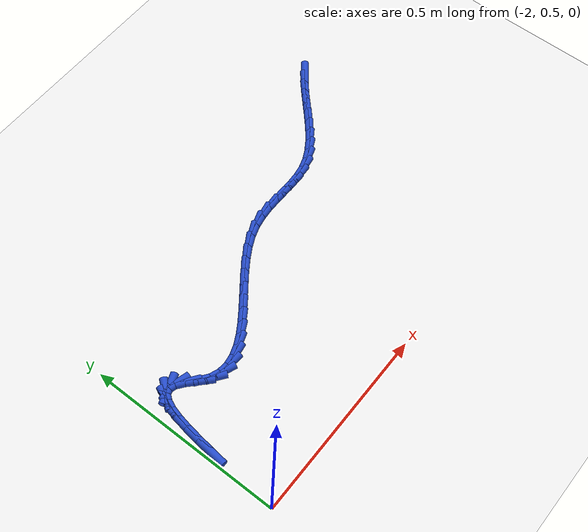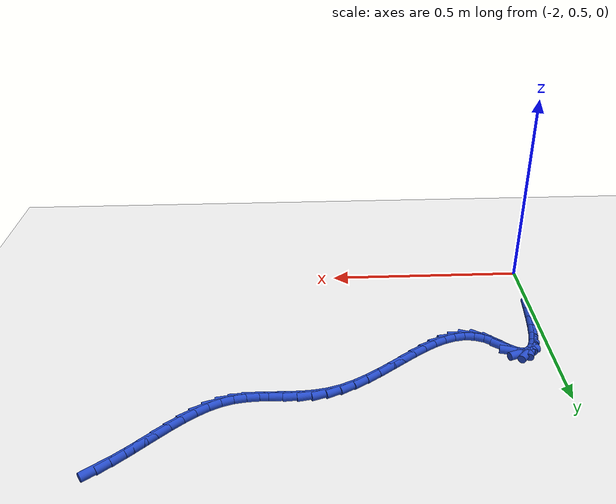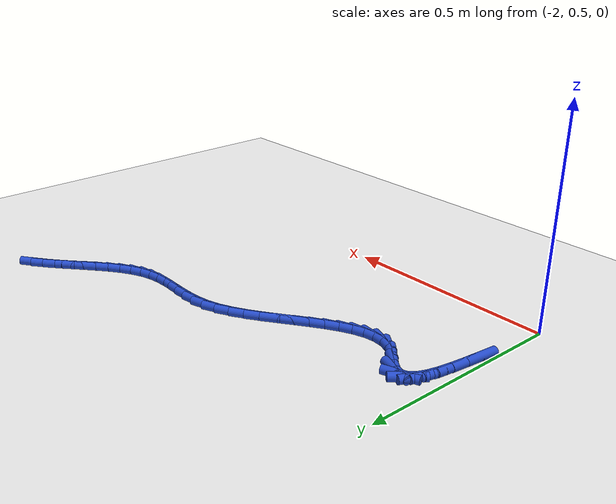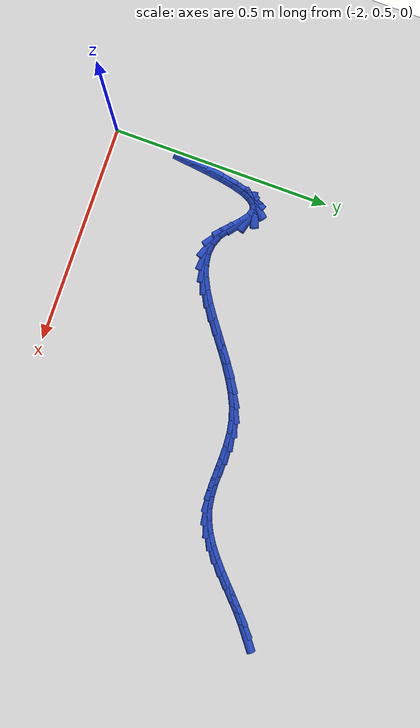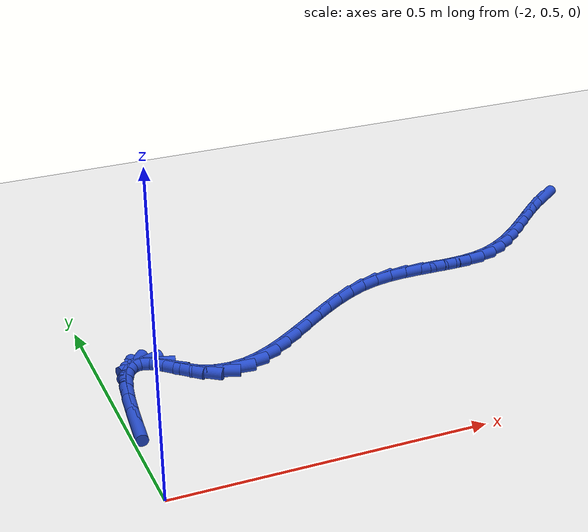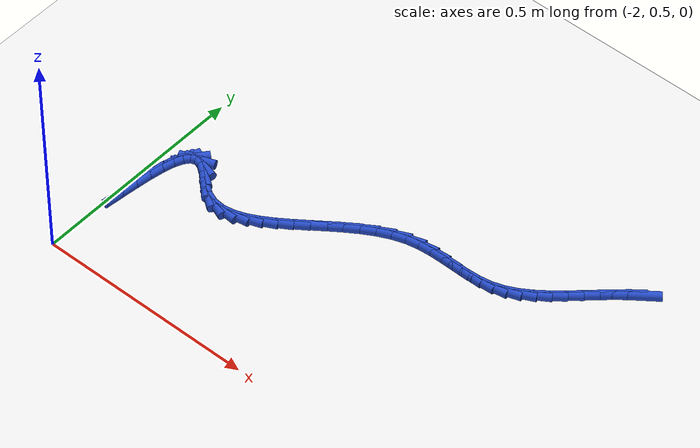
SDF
<sdf version="1.6">
 <world name="default">
  <model name="ground_plane">
   <static>1</static>
   <link name="link">
    <collision name="collision">
     <geometry><plane><normal>0 0 1</normal><size>100 100</size></plane></geometry>
     <surface><friction><ode><mu>100</mu><mu2>50</mu2></ode></friction></surface>
    </collision>
    <visual name="visual">
     <cast_shadows>0</cast_shadows>
     <geometry><plane><normal>0 0 1</normal><size>100 100</size></plane></geometry>
     <material>
      <script><uri>file://media/materials/scripts/gazebo.material</uri><name>Gazebo/WhiteGlow</name></script>
     </material>
    </visual>
   </link>
  </model>
  <model name="line">
   <link name="link_59">
    <pose>-1.0268595634403772 1.15695403888063 0.01 0 1.57 0.649996008952259</pose>
    <collision name="collision">
     <geometry><cylinder><radius>0.01</radius><length>0.08</length></cylinder></geometry>
    </collision>
    <visual name="visual">
     <material>
      <script><name>Gazebo/Blue</name><uri>file://media/materials/scripts/gazebo.material</uri></script>
     </material>
     <geometry><cylinder><radius>0.01</radius><length>0.08</length></cylinder></geometry>
    </visual>
   </link>
   <link name="link_60">
    <pose>-1.050406962922041 1.139053350496211 0.01 0 1.57 0.7078046991807261</pose>
    <collision name="collision">
     <geometry><cylinder><radius>0.01</radius><length>0.08</length></cylinder></geometry>
    </collision>
    <visual name="visual">
     <material>
      <script><name>Gazebo/Blue</name><uri>file://media/materials/scripts/gazebo.material</uri></script>
     </material>
     <geometry><cylinder><radius>0.01</radius><length>0.08</length></cylinder></geometry>
    </visual>
   </link>
   <link name="link_61">
    <pose>-1.073649506111491 1.119164272067784 0.01 0 1.57 0.7405638999294977</pose>
    <collision name="collision">
     <geometry><cylinder><radius>0.01</radius><length>0.08</length></cylinder></geometry>
    </collision>
    <visual name="visual">
     <material>
      <script><name>Gazebo/Blue</name><uri>file://media/materials/scripts/gazebo.material</uri></script>
     </material>
     <geometry><cylinder><radius>0.01</radius><length>0.08</length></cylinder></geometry>
    </visual>
   </link>
   <link name="link_62">
    <pose>-1.096747775658464 1.0980495870286915 0.01 0 1.57 0.751019264532087</pose>
    <collision name="collision">
     <geometry><cylinder><radius>0.01</radius><length>0.08</length></cylinder></geometry>
    </collision>
    <visual name="visual">
     <material>
      <script><name>Gazebo/Blue</name><uri>file://media/materials/scripts/gazebo.material</uri></script>
     </material>
     <geometry><cylinder><radius>0.01</radius><length>0.08</length></cylinder></geometry>
    </visual>
   </link>
   <link name="link_63">
    <pose>-1.1198623542126969 1.0764720788122768 0.01 0 1.57 0.7402422834711558</pose>
    <collision name="collision">
     <geometry><cylinder><radius>0.01</radius><length>0.08</length></cylinder></geometry>
    </collision>
    <visual name="visual">
     <material>
      <script><name>Gazebo/Blue</name><uri>file://media/materials/scripts/gazebo.material</uri></script>
     </material>
     <geometry><cylinder><radius>0.01</radius><length>0.08</length></cylinder></geometry>
    </visual>
   </link>
   <link name="link_64">
    <pose>-1.1431538244239263 1.0551945308518815 0.01 0 1.57 0.7076843635262953</pose>
    <collision name="collision">
     <geometry><cylinder><radius>0.01</radius><length>0.08</length></cylinder></geometry>
    </collision>
    <visual name="visual">
     <material>
      <script><name>Gazebo/Blue</name><uri>file://media/materials/scripts/gazebo.material</uri></script>
     </material>
     <geometry><cylinder><radius>0.01</radius><length>0.08</length></cylinder></geometry>
    </visual>
   </link>
   <link name="link_65">
    <pose>-1.166782768941889 1.0349797265808487 0.01 0 1.57 0.6512550175250601</pose>
    <collision name="collision">
     <geometry><cylinder><radius>0.01</radius><length>0.08</length></cylinder></geometry>
    </collision>
    <visual name="visual">
     <material>
      <script><name>Gazebo/Blue</name><uri>file://media/materials/scripts/gazebo.material</uri></script>
     </material>
     <geometry><cylinder><radius>0.01</radius><length>0.08</length></cylinder></geometry>
    </visual>
   </link>
   <link name="link_66">
    <pose>-1.190909770416323 1.016590449432521 0.01 0 1.57 0.5675410788198653</pose>
    <collision name="collision">
     <geometry><cylinder><radius>0.01</radius><length>0.08</length></cylinder></geometry>
    </collision>
    <visual name="visual">
     <material>
      <script><name>Gazebo/Blue</name><uri>file://media/materials/scripts/gazebo.material</uri></script>
     </material>
     <geometry><cylinder><radius>0.01</radius><length>0.08</length></cylinder></geometry>
    </visual>
   </link>
   <link name="link_67">
    <pose>-1.2156954114969638 1.0007894828402408 0.01 0 1.57 0.4525716785073571</pose>
    <collision name="collision">
     <geometry><cylinder><radius>0.01</radius><length>0.08</length></cylinder></geometry>
    </collision>
    <visual name="visual">
     <material>
      <script><name>Gazebo/Blue</name><uri>file://media/materials/scripts/gazebo.material</uri></script>
     </material>
     <geometry><cylinder><radius>0.01</radius><length>0.08</length></cylinder></geometry>
    </visual>
   </link>
   <link name="link_68">
    <pose>-1.2413002748335489 0.9883396102373505 0.01 0 1.57 0.3046990338171585</pose>
    <collision name="collision">
     <geometry><cylinder><radius>0.01</radius><length>0.08</length></cylinder></geometry>
    </collision>
    <visual name="visual">
     <material>
      <script><name>Gazebo/Blue</name><uri>file://media/materials/scripts/gazebo.material</uri></script>
     </material>
     <geometry><cylinder><radius>0.01</radius><length>0.08</length></cylinder></geometry>
    </visual>
   </link>
   <link name="link_69">
    <pose>-1.2678809700214257 0.9799801819713116 0.01 0 1.57 0.1571197864587474</pose>
    <collision name="collision">
     <geometry><cylinder><radius>0.01</radius><length>0.08</length></cylinder></geometry>
    </collision>
    <visual name="visual">
     <material>
      <script><name>Gazebo/Blue</name><uri>file://media/materials/scripts/gazebo.material</uri></script>
     </material>
     <geometry><cylinder><radius>0.01</radius><length>0.08</length></cylinder></geometry>
    </visual>
   </link>
   <link name="link_70">
    <pose>-1.2954519706134995 0.9756122296144618 0.01 0 1.57 0.05362126650685423</pose>
    <collision name="collision">
     <geometry><cylinder><radius>0.01</radius><length>0.08</length></cylinder></geometry>
    </collision>
    <visual name="visual">
     <material>
      <script><name>Gazebo/Blue</name><uri>file://media/materials/scripts/gazebo.material</uri></script>
     </material>
     <geometry><cylinder><radius>0.01</radius><length>0.08</length></cylinder></geometry>
    </visual>
   </link>
   <link name="link_71">
    <pose>-1.3238499355535736 0.9740880336782486 0.01 0 1.57 -0.0036370678378885098</pose>
    <collision name="collision">
     <geometry><cylinder><radius>0.01</radius><length>0.08</length></cylinder></geometry>
    </collision>
    <visual name="visual">
     <material>
      <script><name>Gazebo/Blue</name><uri>file://media/materials/scripts/gazebo.material</uri></script>
     </material>
     <geometry><cylinder><radius>0.01</radius><length>0.08</length></cylinder></geometry>
    </visual>
   </link>
   <link name="link_72">
    <pose>-1.3529003026354236 0.9741936922999346 0.01 0 1.57 -0.017663011877681878</pose>
    <collision name="collision">
     <geometry><cylinder><radius>0.01</radius><length>0.08</length></cylinder></geometry>
    </collision>
    <visual name="visual">
     <material>
      <script><name>Gazebo/Blue</name><uri>file://media/materials/scripts/gazebo.material</uri></script>
     </material>
     <geometry><cylinder><radius>0.01</radius><length>0.08</length></cylinder></geometry>
    </visual>
   </link>
   <link name="link_73">
    <pose>-1.382428509652826 0.9747153036167832 0.01 0 1.57 0.00926303029904353</pose>
    <collision name="collision">
     <geometry><cylinder><radius>0.01</radius><length>0.08</length></cylinder></geometry>
    </collision>
    <visual name="visual">
     <material>
      <script><name>Gazebo/Blue</name><uri>file://media/materials/scripts/gazebo.material</uri></script>
     </material>
     <geometry><cylinder><radius>0.01</radius><length>0.08</length></cylinder></geometry>
    </visual>
   </link>
   <link name="link_74">
    <pose>-1.4122599943995577 0.9744389657660574 0.01 0 1.57 0.07622630492362324</pose>
    <collision name="collision">
     <geometry><cylinder><radius>0.01</radius><length>0.08</length></cylinder></geometry>
    </collision>
    <visual name="visual">
     <material>
      <script><name>Gazebo/Blue</name><uri>file://media/materials/scripts/gazebo.material</uri></script>
     </material>
     <geometry><cylinder><radius>0.01</radius><length>0.08</length></cylinder></geometry>
    </visual>
   </link>
   <link name="link_75">
    <pose>-1.4422201946693949 0.9721507768850205 0.01 0 1.57 0.18227833138116137</pose>
    <collision name="collision">
     <geometry><cylinder><radius>0.01</radius><length>0.08</length></cylinder></geometry>
    </collision>
    <visual name="visual">
     <material>
      <script><name>Gazebo/Blue</name><uri>file://media/materials/scripts/gazebo.material</uri></script>
     </material>
     <geometry><cylinder><radius>0.01</radius><length>0.08</length></cylinder></geometry>
    </visual>
   </link>
   <link name="link_76">
    <pose>-1.4721345482561132 0.966636835110935 0.01 0 1.57 0.3186698368415467</pose>
    <collision name="collision">
     <geometry><cylinder><radius>0.01</radius><length>0.08</length></cylinder></geometry>
    </collision>
    <visual name="visual">
     <material>
      <script><name>Gazebo/Blue</name><uri>file://media/materials/scripts/gazebo.material</uri></script>
     </material>
     <geometry><cylinder><radius>0.01</radius><length>0.08</length></cylinder></geometry>
    </visual>
   </link>
   <link name="link_77">
    <pose>-1.5018390750313917 0.9568369013735899 0.01 0 1.57 0.4396056267921647</pose>
    <collision name="collision">
     <geometry><cylinder><radius>0.01</radius><length>0.08</length></cylinder></geometry>
    </collision>
    <visual name="visual">
     <material>
      <script><name>Gazebo/Blue</name><uri>file://media/materials/scripts/gazebo.material</uri></script>
     </material>
     <geometry><cylinder><radius>0.01</radius><length>0.08</length></cylinder></geometry>
    </visual>
   </link>
   <link name="link_78">
    <pose>-1.5312599776869054 0.9430002850757648 0.01 0 1.57 0.5275882212535083</pose>
    <collision name="collision">
     <geometry><cylinder><radius>0.01</radius><length>0.08</length></cylinder></geometry>
    </collision>
    <visual name="visual">
     <material>
      <script><name>Gazebo/Blue</name><uri>file://media/materials/scripts/gazebo.material</uri></script>
     </material>
     <geometry><cylinder><radius>0.01</radius><length>0.08</length></cylinder></geometry>
    </visual>
   </link>
   <link name="link_79">
    <pose>-1.5603690918196709 0.9260389329330901 0.01 0 1.57 0.5877457075153457</pose>
    <collision name="collision">
     <geometry><cylinder><radius>0.01</radius><length>0.08</length></cylinder></geometry>
    </collision>
    <visual name="visual">
     <material>
      <script><name>Gazebo/Blue</name><uri>file://media/materials/scripts/gazebo.material</uri></script>
     </material>
     <geometry><cylinder><radius>0.01</radius><length>0.08</length></cylinder></geometry>
    </visual>
   </link>
   <link name="link_80">
    <pose>-1.5891386068787914 0.9068699299620488 0.01 0 1.57 0.62425611979382</pose>
    <collision name="collision">
     <geometry><cylinder><radius>0.01</radius><length>0.08</length></cylinder></geometry>
    </collision>
    <visual name="visual">
     <material>
      <script><name>Gazebo/Blue</name><uri>file://media/materials/scripts/gazebo.material</uri></script>
     </material>
     <geometry><cylinder><radius>0.01</radius><length>0.08</length></cylinder></geometry>
    </visual>
   </link>
   <link name="link_81">
    <pose>-1.61754071231337 0.8864103611791249 0.01 0 1.57 0.6395564176168439</pose>
    <collision name="collision">
     <geometry><cylinder><radius>0.01</radius><length>0.08</length></cylinder></geometry>
    </collision>
    <visual name="visual">
     <material>
      <script><name>Gazebo/Blue</name><uri>file://media/materials/scripts/gazebo.material</uri></script>
     </material>
     <geometry><cylinder><radius>0.01</radius><length>0.08</length></cylinder></geometry>
    </visual>
   </link>
   <link name="link_82">
    <pose>-1.6455475975725113 0.8655773116008022 0.01 0 1.57 0.63419210655274</pose>
    <collision name="collision">
     <geometry><cylinder><radius>0.01</radius><length>0.08</length></cylinder></geometry>
    </collision>
    <visual name="visual">
     <material>
      <script><name>Gazebo/Blue</name><uri>file://media/materials/scripts/gazebo.material</uri></script>
     </material>
     <geometry><cylinder><radius>0.01</radius><length>0.08</length></cylinder></geometry>
    </visual>
   </link>
   <link name="link_83">
    <pose>-1.673131452105318 0.8452878662435644 0.01 0 1.57 0.6066490743650689</pose>
    <collision name="collision">
     <geometry><cylinder><radius>0.01</radius><length>0.08</length></cylinder></geometry>
    </collision>
    <visual name="visual">
     <material>
      <script><name>Gazebo/Blue</name><uri>file://media/materials/scripts/gazebo.material</uri></script>
     </material>
     <geometry><cylinder><radius>0.01</radius><length>0.08</length></cylinder></geometry>
    </visual>
   </link>
   <link name="link_84">
    <pose>-1.7002644653608943 0.8264591101238955 0.01 0 1.57 0.5529682085491945</pose>
    <collision name="collision">
     <geometry><cylinder><radius>0.01</radius><length>0.08</length></cylinder></geometry>
    </collision>
    <visual name="visual">
     <material>
      <script><name>Gazebo/Blue</name><uri>file://media/materials/scripts/gazebo.material</uri></script>
     </material>
     <geometry><cylinder><radius>0.01</radius><length>0.08</length></cylinder></geometry>
    </visual>
   </link>
   <link name="link_85">
    <pose>-1.7269188267883437 0.8100081282582791 0.01 0 1.57 0.4661585482460746</pose>
    <collision name="collision">
     <geometry><cylinder><radius>0.01</radius><length>0.08</length></cylinder></geometry>
    </collision>
    <visual name="visual">
     <material>
      <script><name>Gazebo/Blue</name><uri>file://media/materials/scripts/gazebo.material</uri></script>
     </material>
     <geometry><cylinder><radius>0.01</radius><length>0.08</length></cylinder></geometry>
    </visual>
   </link>
   <link name="link_86">
    <pose>-1.7530667258367696 0.7968520056631989 0.01 0 1.57 0.3359584693143793</pose>
    <collision name="collision">
     <geometry><cylinder><radius>0.01</radius><length>0.08</length></cylinder></geometry>
    </collision>
    <visual name="visual">
     <material>
      <script><name>Gazebo/Blue</name><uri>file://media/materials/scripts/gazebo.material</uri></script>
     </material>
     <geometry><cylinder><radius>0.01</radius><length>0.08</length></cylinder></geometry>
    </visual>
   </link>
   <link name="link_87">
    <pose>-1.7786803519552763 0.7879078273551391 0.01 0 1.57 0.15113073465968058</pose>
    <collision name="collision">
     <geometry><cylinder><radius>0.01</radius><length>0.08</length></cylinder></geometry>
    </collision>
    <visual name="visual">
     <material>
      <script><name>Gazebo/Blue</name><uri>file://media/materials/scripts/gazebo.material</uri></script>
     </material>
     <geometry><cylinder><radius>0.01</radius><length>0.08</length></cylinder></geometry>
    </visual>
   </link>
   <link name="link_88">
    <pose>-1.8037318945929657 0.784092678350583 0.01 0 1.57 -0.09095095691254401</pose>
    <collision name="collision">
     <geometry><cylinder><radius>0.01</radius><length>0.08</length></cylinder></geometry>
    </collision>
    <visual name="visual">
     <material>
      <script><name>Gazebo/Blue</name><uri>file://media/materials/scripts/gazebo.material</uri></script>
     </material>
     <geometry><cylinder><radius>0.01</radius><length>0.08</length></cylinder></geometry>
    </visual>
   </link>
   <link name="link_89">
    <pose>-1.8281935431989438 0.7863236436660147 0.01 0 1.57 -0.36802908608386886</pose>
    <collision name="collision">
     <geometry><cylinder><radius>0.01</radius><length>0.08</length></cylinder></geometry>
    </collision>
    <visual name="visual">
     <material>
      <script><name>Gazebo/Blue</name><uri>file://media/materials/scripts/gazebo.material</uri></script>
     </material>
     <geometry><cylinder><radius>0.01</radius><length>0.08</length></cylinder></geometry>
    </visual>
   </link>
   <link name="link_90">
    <pose>-1.8520374872223129 0.7955178083179177 0.01 0 1.57 -0.6306935949167997</pose>
    <collision name="collision">
     <geometry><cylinder><radius>0.01</radius><length>0.08</length></cylinder></geometry>
    </collision>
    <visual name="visual">
     <material>
      <script><name>Gazebo/Blue</name><uri>file://media/materials/scripts/gazebo.material</uri></script>
     </material>
     <geometry><cylinder><radius>0.01</radius><length>0.08</length></cylinder></geometry>
    </visual>
   </link>
   <link name="link_91">
    <pose>-1.8752162139720312 0.8124423949844832 0.01 0 1.57 -0.7532038252249742</pose>
    <collision name="collision">
     <geometry><cylinder><radius>0.01</radius><length>0.08</length></cylinder></geometry>
    </collision>
    <visual name="visual">
     <material>
      <script><name>Gazebo/Blue</name><uri>file://media/materials/scripts/gazebo.material</uri></script>
     </material>
     <geometry><cylinder><radius>0.01</radius><length>0.08</length></cylinder></geometry>
    </visual>
   </link>
   <link name="link_92">
    <pose>-1.8970286987094969 0.8328937529857227 0.01 0 1.57 -0.6419446578146965</pose>
    <collision name="collision">
     <geometry><cylinder><radius>0.01</radius><length>0.08</length></cylinder></geometry>
    </collision>
    <visual name="visual">
     <material>
      <script><name>Gazebo/Blue</name><uri>file://media/materials/scripts/gazebo.material</uri></script>
     </material>
     <geometry><cylinder><radius>0.01</radius><length>0.08</length></cylinder></geometry>
    </visual>
   </link>
   <link name="link_93">
    <pose>-1.9160609780098883 0.847121730751504 0.01 0 1.57 -0.26102921792585504</pose>
    <collision name="collision">
     <geometry><cylinder><radius>0.01</radius><length>0.08</length></cylinder></geometry>
    </collision>
    <visual name="visual">
     <material>
      <script><name>Gazebo/Blue</name><uri>file://media/materials/scripts/gazebo.material</uri></script>
     </material>
     <geometry><cylinder><radius>0.01</radius><length>0.08</length></cylinder></geometry>
    </visual>
   </link>
   <link name="link_94">
    <pose>-1.9319112546634418 0.8513557184197111 0.01 0 1.57 0.3584207228916127</pose>
    <collision name="collision">
     <geometry><cylinder><radius>0.01</radius><length>0.08</length></cylinder></geometry>
    </collision>
    <visual name="visual">
     <material>
      <script><name>Gazebo/Blue</name><uri>file://media/materials/scripts/gazebo.material</uri></script>
     </material>
     <geometry><cylinder><radius>0.01</radius><length>0.08</length></cylinder></geometry>
    </visual>
   </link>
   <link name="link_95">
    <pose>-1.9449540304258517 0.8464698829637043 0.01 0 1.57 0.8864036583558971</pose>
    <collision name="collision">
     <geometry><cylinder><radius>0.01</radius><length>0.08</length></cylinder></geometry>
    </collision>
    <visual name="visual">
     <material>
      <script><name>Gazebo/Blue</name><uri>file://media/materials/scripts/gazebo.material</uri></script>
     </material>
     <geometry><cylinder><radius>0.01</radius><length>0.08</length></cylinder></geometry>
    </visual>
   </link>
   <link name="link_96">
    <pose>-1.9555816404784478 0.8334450928803213 0.01 0 1.57 1.1677907285765154</pose>
    <collision name="collision">
     <geometry><cylinder><radius>0.01</radius><length>0.08</length></cylinder></geometry>
    </collision>
    <visual name="visual">
     <material>
      <script><name>Gazebo/Blue</name><uri>file://media/materials/scripts/gazebo.material</uri></script>
     </material>
     <geometry><cylinder><radius>0.01</radius><length>0.08</length></cylinder></geometry>
    </visual>
   </link>
   <link name="link_97">
    <pose>-1.9641864200025583 0.8132622166663993 0.01 0 1.57 1.3121455403583258</pose>
    <collision name="collision">
     <geometry><cylinder><radius>0.01</radius><length>0.08</length></cylinder></geometry>
    </collision>
    <visual name="visual">
     <material>
      <script><name>Gazebo/Blue</name><uri>file://media/materials/scripts/gazebo.material</uri></script>
     </material>
     <geometry><cylinder><radius>0.01</radius><length>0.08</length></cylinder></geometry>
    </visual>
   </link>
   <link name="link_98">
    <pose>-1.9711607041795138 0.7869021228187764 0.01 0 1.57 1.3909861124020328</pose>
    <collision name="collision">
     <geometry><cylinder><radius>0.01</radius><length>0.08</length></cylinder></geometry>
    </collision>
    <visual name="visual">
     <material>
      <script><name>Gazebo/Blue</name><uri>file://media/materials/scripts/gazebo.material</uri></script>
     </material>
     <geometry><cylinder><radius>0.01</radius><length>0.08</length></cylinder></geometry>
    </visual>
   </link>
   <link name="link_99">
    <pose>-1.9768968281906436 0.7553456798342902 0.01 0 1.57 1.4349308012764361</pose>
    <collision name="collision">
     <geometry><cylinder><radius>0.01</radius><length>0.08</length></cylinder></geometry>
    </collision>
    <visual name="visual">
     <material>
      <script><name>Gazebo/Blue</name><uri>file://media/materials/scripts/gazebo.material</uri></script>
     </material>
     <geometry><cylinder><radius>0.01</radius><length>0.08</length></cylinder></geometry>
    </visual>
   </link>
   <link name="link_100">
    <pose>-1.981787127217276 0.7195737562097783 0.01 0 1.57 1.4575378214513057</pose>
    <collision name="collision">
     <geometry><cylinder><radius>0.01</radius><length>0.08</length></cylinder></geometry>
    </collision>
    <visual name="visual">
     <material>
      <script><name>Gazebo/Blue</name><uri>file://media/materials/scripts/gazebo.material</uri></script>
     </material>
     <geometry><cylinder><radius>0.01</radius><length>0.08</length></cylinder></geometry>
    </visual>
   </link>
   <link name="link_101">
    <pose>-1.986223936440741 0.6805672204420783 0.01 0 1.57 1.4651411855793526</pose>
    <collision name="collision">
     <geometry><cylinder><radius>0.01</radius><length>0.08</length></cylinder></geometry>
    </collision>
    <visual name="visual">
     <material>
      <script><name>Gazebo/Blue</name><uri>file://media/materials/scripts/gazebo.material</uri></script>
     </material>
     <geometry><cylinder><radius>0.01</radius><length>0.08</length></cylinder></geometry>
    </visual>
   </link>
  </model>
 </world>
</sdf>
